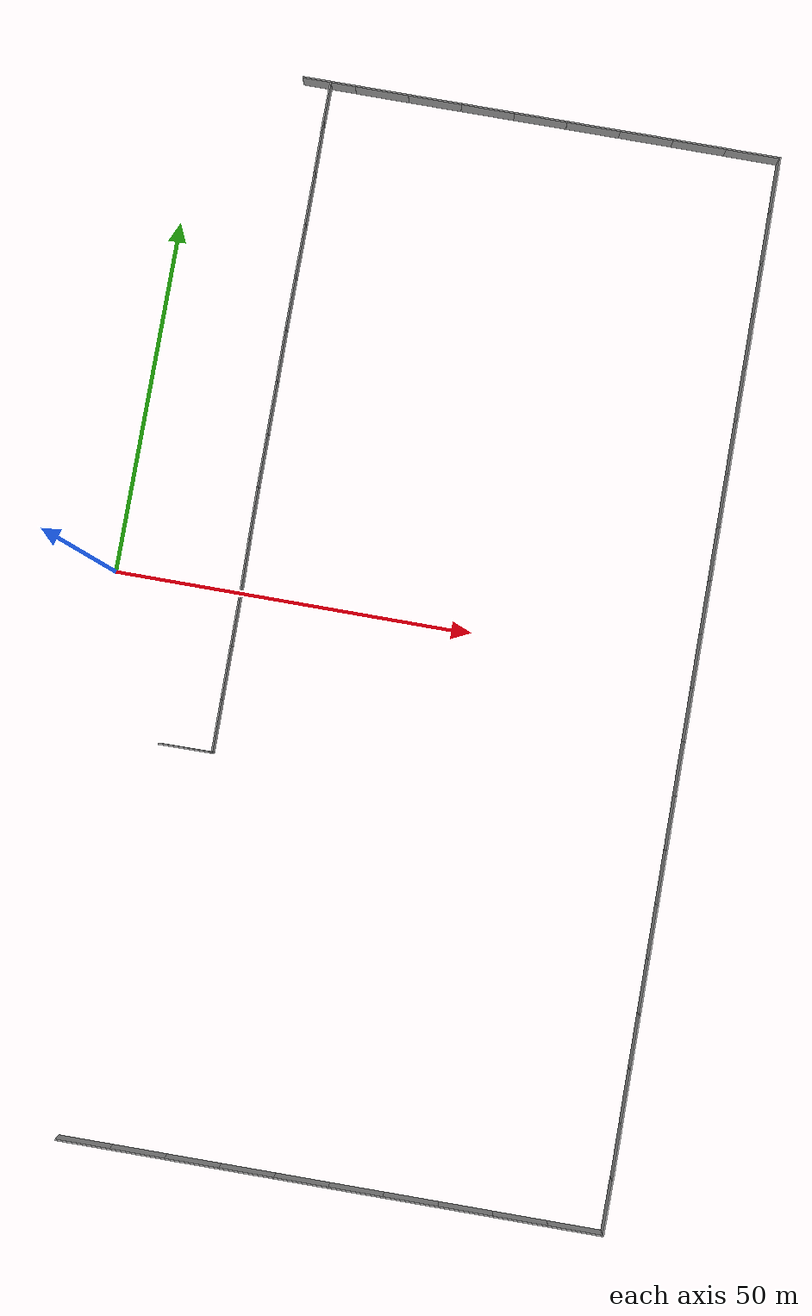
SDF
<sdf version="1.7">
 <world name="default">
  <model name="grey_wall_clone_10_clone_clone_clone_11_clone_clone_8">
   <static>1</static>
   <link name="link">
    <pose>0 0 1.4 0 -0 0</pose>
    <collision name="collision"><geometry><box><size>7.5 0.2 2.8</size></box></geometry></collision>
    <visual name="visual">
     <cast_shadows>0</cast_shadows>
     <geometry><box><size>7.5 0.2 2.8</size></box></geometry>
     <material>
      <script>
       <uri>model://forest/grey_wall/materials/scripts</uri>
       <uri>model://forest/grey_wall/materials/textures</uri>
       <name>vrc/grey_wall</name>
      </script>
     </material>
    </visual>
   </link>
   <pose>9.9578 -77.2456 0 0 -0 0</pose>
  </model>
  <model name="grey_wall_clone_10_clone_clone_clone_11_clone_clone_9">
   <static>1</static>
   <link name="link">
    <pose>0 0 1.4 0 -0 0</pose>
    <collision name="collision"><geometry><box><size>7.5 0.2 2.8</size></box></geometry></collision>
    <visual name="visual">
     <cast_shadows>0</cast_shadows>
     <geometry><box><size>7.5 0.2 2.8</size></box></geometry>
     <material>
      <script>
       <uri>model://forest/grey_wall/materials/scripts</uri>
       <uri>model://forest/grey_wall/materials/textures</uri>
       <name>vrc/grey_wall</name>
      </script>
     </material>
    </visual>
   </link>
   <pose>17.442 -77.2428 0 0 -0 0</pose>
  </model>
  <model name="grey_wall_clone_10_clone_clone_clone_11_clone_clone_10">
   <static>1</static>
   <link name="link">
    <pose>0 0 1.4 0 -0 0</pose>
    <collision name="collision"><geometry><box><size>7.5 0.2 2.8</size></box></geometry></collision>
    <visual name="visual">
     <cast_shadows>0</cast_shadows>
     <geometry><box><size>7.5 0.2 2.8</size></box></geometry>
     <material>
      <script>
       <uri>model://forest/grey_wall/materials/scripts</uri>
       <uri>model://forest/grey_wall/materials/textures</uri>
       <name>vrc/grey_wall</name>
      </script>
     </material>
    </visual>
   </link>
   <pose>24.9441 -77.2473 0 0 -0 0</pose>
  </model>
  <model name="grey_wall_clone_10_clone_clone_clone_11_clone_clone_11">
   <static>1</static>
   <link name="link">
    <pose>0 0 1.4 0 -0 0</pose>
    <collision name="collision"><geometry><box><size>7.5 0.2 2.8</size></box></geometry></collision>
    <visual name="visual">
     <cast_shadows>0</cast_shadows>
     <geometry><box><size>7.5 0.2 2.8</size></box></geometry>
     <material>
      <script>
       <uri>model://forest/grey_wall/materials/scripts</uri>
       <uri>model://forest/grey_wall/materials/textures</uri>
       <name>vrc/grey_wall</name>
      </script>
     </material>
    </visual>
   </link>
   <pose>32.4421 -77.2463 0 0 -0 0</pose>
  </model>
  <model name="grey_wall_clone_10_clone_clone_clone_11_clone_clone_12">
   <static>1</static>
   <link name="link">
    <pose>0 0 1.4 0 -0 0</pose>
    <collision name="collision"><geometry><box><size>7.5 0.2 2.8</size></box></geometry></collision>
    <visual name="visual">
     <cast_shadows>0</cast_shadows>
     <geometry><box><size>7.5 0.2 2.8</size></box></geometry>
     <material>
      <script>
       <uri>model://forest/grey_wall/materials/scripts</uri>
       <uri>model://forest/grey_wall/materials/textures</uri>
       <name>vrc/grey_wall</name>
      </script>
     </material>
    </visual>
   </link>
   <pose>39.9314 -77.2456 0 0 -0 0</pose>
  </model>
  <model name="grey_wall_clone_10_clone_clone_clone_11_clone_clone_13">
   <static>1</static>
   <link name="link">
    <pose>0 0 1.4 0 -0 0</pose>
    <collision name="collision"><geometry><box><size>7.5 0.2 2.8</size></box></geometry></collision>
    <visual name="visual">
     <cast_shadows>0</cast_shadows>
     <geometry><box><size>7.5 0.2 2.8</size></box></geometry>
     <material>
      <script>
       <uri>model://forest/grey_wall/materials/scripts</uri>
       <uri>model://forest/grey_wall/materials/textures</uri>
       <name>vrc/grey_wall</name>
      </script>
     </material>
    </visual>
   </link>
   <pose>47.429 -77.2489 0 0 -0 0</pose>
  </model>
  <model name="grey_wall_clone_10_clone_clone_clone_11_clone_clone_14">
   <static>1</static>
   <link name="link">
    <pose>0 0 1.4 0 -0 0</pose>
    <collision name="collision"><geometry><box><size>7.5 0.2 2.8</size></box></geometry></collision>
    <visual name="visual">
     <cast_shadows>0</cast_shadows>
     <geometry><box><size>7.5 0.2 2.8</size></box></geometry>
     <material>
      <script>
       <uri>model://forest/grey_wall/materials/scripts</uri>
       <uri>model://forest/grey_wall/materials/textures</uri>
       <name>vrc/grey_wall</name>
      </script>
     </material>
    </visual>
   </link>
   <pose>54.8935 -77.2438 0 0 -0 0</pose>
  </model>
  <model name="grey_wall_clone_10_clone_clone_clone_11_clone_clone_15">
   <static>1</static>
   <link name="link">
    <pose>0 0 1.4 0 -0 0</pose>
    <collision name="collision"><geometry><box><size>7.5 0.2 2.8</size></box></geometry></collision>
    <visual name="visual">
     <cast_shadows>0</cast_shadows>
     <geometry><box><size>7.5 0.2 2.8</size></box></geometry>
     <material>
      <script>
       <uri>model://forest/grey_wall/materials/scripts</uri>
       <uri>model://forest/grey_wall/materials/textures</uri>
       <name>vrc/grey_wall</name>
      </script>
     </material>
    </visual>
   </link>
   <pose>62.4043 -77.2429 0 0 -0 0</pose>
  </model>
  <model name="grey_wall_clone_10_clone_clone_clone_11_clone_clone_16">
   <static>1</static>
   <link name="link">
    <pose>0 0 1.4 0 -0 0</pose>
    <collision name="collision"><geometry><box><size>7.5 0.2 2.8</size></box></geometry></collision>
    <visual name="visual">
     <cast_shadows>0</cast_shadows>
     <geometry><box><size>7.5 0.2 2.8</size></box></geometry>
     <material>
      <script>
       <uri>model://forest/grey_wall/materials/scripts</uri>
       <uri>model://forest/grey_wall/materials/textures</uri>
       <name>vrc/grey_wall</name>
      </script>
     </material>
    </visual>
   </link>
   <pose>69.8968 -77.2494 0 0 -0 0</pose>
  </model>
  <model name="grey_wall_clone_10_clone_clone_clone_11_clone_clone_17">
   <static>1</static>
   <link name="link">
    <pose>0 0 1.4 0 -0 0</pose>
    <collision name="collision"><geometry><box><size>7.5 0.2 2.8</size></box></geometry></collision>
    <visual name="visual">
     <cast_shadows>0</cast_shadows>
     <geometry><box><size>7.5 0.2 2.8</size></box></geometry>
     <material>
      <script>
       <uri>model://forest/grey_wall/materials/scripts</uri>
       <uri>model://forest/grey_wall/materials/textures</uri>
       <name>vrc/grey_wall</name>
      </script>
     </material>
    </visual>
   </link>
   <pose>77.4066 -77.2521 0 0 -0 0</pose>
  </model>
  <model name="grey_wall_clone_10_clone_0_clone_11_clone">
   <static>1</static>
   <link name="link">
    <pose>0 0 1.4 0 -0 0</pose>
    <collision name="collision"><geometry><box><size>7.5 0.2 2.8</size></box></geometry></collision>
    <visual name="visual">
     <cast_shadows>0</cast_shadows>
     <geometry><box><size>7.5 0.2 2.8</size></box></geometry>
     <material>
      <script>
       <uri>model://forest/grey_wall/materials/scripts</uri>
       <uri>model://forest/grey_wall/materials/textures</uri>
       <name>vrc/grey_wall</name>
      </script>
     </material>
    </visual>
   </link>
   <pose>81.2442 -73.5802 0 0 0 -1.5802</pose>
  </model>
  <model name="grey_wall_clone_10_clone_0_clone_10_clone">
   <static>1</static>
   <link name="link">
    <pose>0 0 1.4 0 -0 0</pose>
    <collision name="collision"><geometry><box><size>7.5 0.2 2.8</size></box></geometry></collision>
    <visual name="visual">
     <cast_shadows>0</cast_shadows>
     <geometry><box><size>7.5 0.2 2.8</size></box></geometry>
     <material>
      <script>
       <uri>model://forest/grey_wall/materials/scripts</uri>
       <uri>model://forest/grey_wall/materials/textures</uri>
       <name>vrc/grey_wall</name>
      </script>
     </material>
    </visual>
   </link>
   <pose>81.3001 -66.0858 0 0 0 -1.56932</pose>
  </model>
  <model name="grey_wall_clone_10_clone_0_clone_9_clone">
   <static>1</static>
   <link name="link">
    <pose>0 0 1.4 0 -0 0</pose>
    <collision name="collision"><geometry><box><size>7.5 0.2 2.8</size></box></geometry></collision>
    <visual name="visual">
     <cast_shadows>0</cast_shadows>
     <geometry><box><size>7.5 0.2 2.8</size></box></geometry>
     <material>
      <script>
       <uri>model://forest/grey_wall/materials/scripts</uri>
       <uri>model://forest/grey_wall/materials/textures</uri>
       <name>vrc/grey_wall</name>
      </script>
     </material>
    </visual>
   </link>
   <pose>81.2777 -58.6142 0 0 0 -1.56932</pose>
  </model>
  <model name="grey_wall_clone_10_clone_0_clone_8_clone">
   <static>1</static>
   <link name="link">
    <pose>0 0 1.4 0 -0 0</pose>
    <collision name="collision"><geometry><box><size>7.5 0.2 2.8</size></box></geometry></collision>
    <visual name="visual">
     <cast_shadows>0</cast_shadows>
     <geometry><box><size>7.5 0.2 2.8</size></box></geometry>
     <material>
      <script>
       <uri>model://forest/grey_wall/materials/scripts</uri>
       <uri>model://forest/grey_wall/materials/textures</uri>
       <name>vrc/grey_wall</name>
      </script>
     </material>
    </visual>
   </link>
   <pose>81.2777 -51.1177 0 0 0 -1.56932</pose>
  </model>
  <model name="grey_wall_clone_10_clone_0_clone_7_clone">
   <static>1</static>
   <link name="link">
    <pose>0 0 1.4 0 -0 0</pose>
    <collision name="collision"><geometry><box><size>7.5 0.2 2.8</size></box></geometry></collision>
    <visual name="visual">
     <cast_shadows>0</cast_shadows>
     <geometry><box><size>7.5 0.2 2.8</size></box></geometry>
     <material>
      <script>
       <uri>model://forest/grey_wall/materials/scripts</uri>
       <uri>model://forest/grey_wall/materials/textures</uri>
       <name>vrc/grey_wall</name>
      </script>
     </material>
    </visual>
   </link>
   <pose>81.2788 -43.6064 0 0 0 -1.56932</pose>
  </model>
  <model name="grey_wall_clone_10_clone_0_clone_6_clone">
   <static>1</static>
   <link name="link">
    <pose>0 0 1.4 0 -0 0</pose>
    <collision name="collision"><geometry><box><size>7.5 0.2 2.8</size></box></geometry></collision>
    <visual name="visual">
     <cast_shadows>0</cast_shadows>
     <geometry><box><size>7.5 0.2 2.8</size></box></geometry>
     <material>
      <script>
       <uri>model://forest/grey_wall/materials/scripts</uri>
       <uri>model://forest/grey_wall/materials/textures</uri>
       <name>vrc/grey_wall</name>
      </script>
     </material>
    </visual>
   </link>
   <pose>81.2767 -36.0958 0 0 0 -1.56932</pose>
  </model>
  <model name="grey_wall_clone_10_clone_0_clone_5_clone_13">
   <static>1</static>
   <link name="link">
    <pose>0 0 1.4 0 -0 0</pose>
    <collision name="collision"><geometry><box><size>7.5 0.2 2.8</size></box></geometry></collision>
    <visual name="visual">
     <cast_shadows>0</cast_shadows>
     <geometry><box><size>7.5 0.2 2.8</size></box></geometry>
     <material>
      <script>
       <uri>model://forest/grey_wall/materials/scripts</uri>
       <uri>model://forest/grey_wall/materials/textures</uri>
       <name>vrc/grey_wall</name>
      </script>
     </material>
    </visual>
   </link>
   <pose>81.2728 -28.5811 0 0 0 -1.56932</pose>
  </model>
  <model name="grey_wall_clone_10_clone_0_clone_4_clone">
   <static>1</static>
   <link name="link">
    <pose>0 0 1.4 0 -0 0</pose>
    <collision name="collision"><geometry><box><size>7.5 0.2 2.8</size></box></geometry></collision>
    <visual name="visual">
     <cast_shadows>0</cast_shadows>
     <geometry><box><size>7.5 0.2 2.8</size></box></geometry>
     <material>
      <script>
       <uri>model://forest/grey_wall/materials/scripts</uri>
       <uri>model://forest/grey_wall/materials/textures</uri>
       <name>vrc/grey_wall</name>
      </script>
     </material>
    </visual>
   </link>
   <pose>81.2736 -21.0806 0 0 0 -1.56932</pose>
  </model>
  <model name="grey_wall_clone_10_clone_0_clone_3_clone">
   <static>1</static>
   <link name="link">
    <pose>0 0 1.4 0 -0 0</pose>
    <collision name="collision"><geometry><box><size>7.5 0.2 2.8</size></box></geometry></collision>
    <visual name="visual">
     <cast_shadows>0</cast_shadows>
     <geometry><box><size>7.5 0.2 2.8</size></box></geometry>
     <material>
      <script>
       <uri>model://forest/grey_wall/materials/scripts</uri>
       <uri>model://forest/grey_wall/materials/textures</uri>
       <name>vrc/grey_wall</name>
      </script>
     </material>
    </visual>
   </link>
   <pose>81.2554 -13.5842 0 0 0 -1.56932</pose>
  </model>
  <model name="grey_wall_clone_10_clone_0_clone_2_clone">
   <static>1</static>
   <link name="link">
    <pose>0 0 1.4 0 -0 0</pose>
    <collision name="collision"><geometry><box><size>7.5 0.2 2.8</size></box></geometry></collision>
    <visual name="visual">
     <cast_shadows>0</cast_shadows>
     <geometry><box><size>7.5 0.2 2.8</size></box></geometry>
     <material>
      <script>
       <uri>model://forest/grey_wall/materials/scripts</uri>
       <uri>model://forest/grey_wall/materials/textures</uri>
       <name>vrc/grey_wall</name>
      </script>
     </material>
    </visual>
   </link>
   <pose>81.262 -6.06923 0 0 0 -1.56932</pose>
  </model>
  <model name="grey_wall_clone_10_clone_0_clone_1_clone">
   <static>1</static>
   <link name="link">
    <pose>0 0 1.4 0 -0 0</pose>
    <collision name="collision"><geometry><box><size>7.5 0.2 2.8</size></box></geometry></collision>
    <visual name="visual">
     <cast_shadows>0</cast_shadows>
     <geometry><box><size>7.5 0.2 2.8</size></box></geometry>
     <material>
      <script>
       <uri>model://forest/grey_wall/materials/scripts</uri>
       <uri>model://forest/grey_wall/materials/textures</uri>
       <name>vrc/grey_wall</name>
      </script>
     </material>
    </visual>
   </link>
   <pose>81.2538 1.43804 0 0 0 -1.56932</pose>
  </model>
  <model name="grey_wall_clone_10_clone_0_clone_0_clone">
   <static>1</static>
   <link name="link">
    <pose>0 0 1.4 0 -0 0</pose>
    <collision name="collision"><geometry><box><size>7.5 0.2 2.8</size></box></geometry></collision>
    <visual name="visual">
     <cast_shadows>0</cast_shadows>
     <geometry><box><size>7.5 0.2 2.8</size></box></geometry>
     <material>
      <script>
       <uri>model://forest/grey_wall/materials/scripts</uri>
       <uri>model://forest/grey_wall/materials/textures</uri>
       <name>vrc/grey_wall</name>
      </script>
     </material>
    </visual>
   </link>
   <pose>81.2487 8.94341 0 0 0 -1.56932</pose>
  </model>
  <model name="grey_wall_clone_10_clone_0_clone_clone">
   <static>1</static>
   <link name="link">
    <pose>0 0 1.4 0 -0 0</pose>
    <collision name="collision"><geometry><box><size>7.5 0.2 2.8</size></box></geometry></collision>
    <visual name="visual">
     <cast_shadows>0</cast_shadows>
     <geometry><box><size>7.5 0.2 2.8</size></box></geometry>
     <material>
      <script>
       <uri>model://forest/grey_wall/materials/scripts</uri>
       <uri>model://forest/grey_wall/materials/textures</uri>
       <name>vrc/grey_wall</name>
      </script>
     </material>
    </visual>
   </link>
   <pose>81.244 16.4592 0 0 0 -1.56932</pose>
  </model>
  <model name="grey_wall_clone_10_clone_0_clone_12">
   <static>1</static>
   <link name="link">
    <pose>0 0 1.4 0 -0 0</pose>
    <collision name="collision"><geometry><box><size>7.5 0.2 2.8</size></box></geometry></collision>
    <visual name="visual">
     <cast_shadows>0</cast_shadows>
     <geometry><box><size>7.5 0.2 2.8</size></box></geometry>
     <material>
      <script>
       <uri>model://forest/grey_wall/materials/scripts</uri>
       <uri>model://forest/grey_wall/materials/textures</uri>
       <name>vrc/grey_wall</name>
      </script>
     </material>
    </visual>
   </link>
   <pose>81.241 23.9604 0 0 0 -1.56932</pose>
  </model>
  <model name="grey_wall_clone_10_clone_0_clone_13">
   <static>1</static>
   <link name="link">
    <pose>0 0 1.4 0 -0 0</pose>
    <collision name="collision"><geometry><box><size>7.5 0.2 2.8</size></box></geometry></collision>
    <visual name="visual">
     <cast_shadows>0</cast_shadows>
     <geometry><box><size>7.5 0.2 2.8</size></box></geometry>
     <material>
      <script>
       <uri>model://forest/grey_wall/materials/scripts</uri>
       <uri>model://forest/grey_wall/materials/textures</uri>
       <name>vrc/grey_wall</name>
      </script>
     </material>
    </visual>
   </link>
   <pose>81.233 31.4667 0 0 0 -1.56932</pose>
  </model>
  <model name="grey_wall_clone_10_clone_0_clone_14">
   <static>1</static>
   <link name="link">
    <pose>0 0 1.4 0 -0 0</pose>
    <collision name="collision"><geometry><box><size>7.5 0.2 2.8</size></box></geometry></collision>
    <visual name="visual">
     <cast_shadows>0</cast_shadows>
     <geometry><box><size>7.5 0.2 2.8</size></box></geometry>
     <material>
      <script>
       <uri>model://forest/grey_wall/materials/scripts</uri>
       <uri>model://forest/grey_wall/materials/textures</uri>
       <name>vrc/grey_wall</name>
      </script>
     </material>
    </visual>
   </link>
   <pose>81.2299 38.978 0 0 0 -1.56932</pose>
  </model>
  <model name="grey_wall_clone_10_clone_0_clone_15">
   <static>1</static>
   <link name="link">
    <pose>0 0 1.4 0 -0 0</pose>
    <collision name="collision"><geometry><box><size>7.5 0.2 2.8</size></box></geometry></collision>
    <visual name="visual">
     <cast_shadows>0</cast_shadows>
     <geometry><box><size>7.5 0.2 2.8</size></box></geometry>
     <material>
      <script>
       <uri>model://forest/grey_wall/materials/scripts</uri>
       <uri>model://forest/grey_wall/materials/textures</uri>
       <name>vrc/grey_wall</name>
      </script>
     </material>
    </visual>
   </link>
   <pose>81.2399 46.4861 0 0 0 -1.56932</pose>
  </model>
  <model name="grey_wall_clone_10_clone_0_clone_16">
   <static>1</static>
   <link name="link">
    <pose>0 0 1.4 0 -0 0</pose>
    <collision name="collision"><geometry><box><size>7.5 0.2 2.8</size></box></geometry></collision>
    <visual name="visual">
     <cast_shadows>0</cast_shadows>
     <geometry><box><size>7.5 0.2 2.8</size></box></geometry>
     <material>
      <script>
       <uri>model://forest/grey_wall/materials/scripts</uri>
       <uri>model://forest/grey_wall/materials/textures</uri>
       <name>vrc/grey_wall</name>
      </script>
     </material>
    </visual>
   </link>
   <pose>81.2341 53.9889 0 0 0 -1.56932</pose>
  </model>
  <model name="grey_wall_clone_10_clone_0_clone_17">
   <static>1</static>
   <link name="link">
    <pose>0 0 1.4 0 -0 0</pose>
    <collision name="collision"><geometry><box><size>7.5 0.2 2.8</size></box></geometry></collision>
    <visual name="visual">
     <cast_shadows>0</cast_shadows>
     <geometry><box><size>7.5 0.2 2.8</size></box></geometry>
     <material>
      <script>
       <uri>model://forest/grey_wall/materials/scripts</uri>
       <uri>model://forest/grey_wall/materials/textures</uri>
       <name>vrc/grey_wall</name>
      </script>
     </material>
    </visual>
   </link>
   <pose>81.2319 61.4946 0 0 0 -1.56932</pose>
  </model>
  <model name="grey_wall_clone_10_clone_0_clone_18">
   <static>1</static>
   <link name="link">
    <pose>0 0 1.4 0 -0 0</pose>
    <collision name="collision"><geometry><box><size>7.5 0.2 2.8</size></box></geometry></collision>
    <visual name="visual">
     <cast_shadows>0</cast_shadows>
     <geometry><box><size>7.5 0.2 2.8</size></box></geometry>
     <material>
      <script>
       <uri>model://forest/grey_wall/materials/scripts</uri>
       <uri>model://forest/grey_wall/materials/textures</uri>
       <name>vrc/grey_wall</name>
      </script>
     </material>
    </visual>
   </link>
   <pose>81.2148 68.9647 0 0 0 -1.56932</pose>
  </model>
  <model name="grey_wall_clone_10_clone_clone_0">
   <static>1</static>
   <link name="link">
    <pose>0 0 1.4 0 -0 0</pose>
    <collision name="collision"><geometry><box><size>7.5 0.2 2.8</size></box></geometry></collision>
    <visual name="visual">
     <cast_shadows>0</cast_shadows>
     <geometry><box><size>7.5 0.2 2.8</size></box></geometry>
     <material>
      <script>
       <uri>model://forest/grey_wall/materials/scripts</uri>
       <uri>model://forest/grey_wall/materials/textures</uri>
       <name>vrc/grey_wall</name>
      </script>
     </material>
    </visual>
   </link>
   <pose>77.3508 72.6116 0 0 -0 0</pose>
  </model>
  <model name="grey_wall_clone_10_clone_clone_1">
   <static>1</static>
   <link name="link">
    <pose>0 0 1.4 0 -0 0</pose>
    <collision name="collision"><geometry><box><size>7.5 0.2 2.8</size></box></geometry></collision>
    <visual name="visual">
     <cast_shadows>0</cast_shadows>
     <geometry><box><size>7.5 0.2 2.8</size></box></geometry>
     <material>
      <script>
       <uri>model://forest/grey_wall/materials/scripts</uri>
       <uri>model://forest/grey_wall/materials/textures</uri>
       <name>vrc/grey_wall</name>
      </script>
     </material>
    </visual>
   </link>
   <pose>69.8438 72.6289 0 0 -0 0</pose>
  </model>
  <model name="grey_wall_clone_10_clone_clone_2">
   <static>1</static>
   <link name="link">
    <pose>0 0 1.4 0 -0 0</pose>
    <collision name="collision"><geometry><box><size>7.5 0.2 2.8</size></box></geometry></collision>
    <visual name="visual">
     <cast_shadows>0</cast_shadows>
     <geometry><box><size>7.5 0.2 2.8</size></box></geometry>
     <material>
      <script>
       <uri>model://forest/grey_wall/materials/scripts</uri>
       <uri>model://forest/grey_wall/materials/textures</uri>
       <name>vrc/grey_wall</name>
      </script>
     </material>
    </visual>
   </link>
   <pose>62.3519 72.6417 0 0 -0 0</pose>
  </model>
  <model name="grey_wall_clone_10_clone_clone_3">
   <static>1</static>
   <link name="link">
    <pose>0 0 1.4 0 -0 0</pose>
    <collision name="collision"><geometry><box><size>7.5 0.2 2.8</size></box></geometry></collision>
    <visual name="visual">
     <cast_shadows>0</cast_shadows>
     <geometry><box><size>7.5 0.2 2.8</size></box></geometry>
     <material>
      <script>
       <uri>model://forest/grey_wall/materials/scripts</uri>
       <uri>model://forest/grey_wall/materials/textures</uri>
       <name>vrc/grey_wall</name>
      </script>
     </material>
    </visual>
   </link>
   <pose>54.875 72.6299 0 0 -0 0</pose>
  </model>
  <model name="grey_wall_clone_10_clone_clone_4">
   <static>1</static>
   <link name="link">
    <pose>0 0 1.4 0 -0 0</pose>
    <collision name="collision"><geometry><box><size>7.5 0.2 2.8</size></box></geometry></collision>
    <visual name="visual">
     <cast_shadows>0</cast_shadows>
     <geometry><box><size>7.5 0.2 2.8</size></box></geometry>
     <material>
      <script>
       <uri>model://forest/grey_wall/materials/scripts</uri>
       <uri>model://forest/grey_wall/materials/textures</uri>
       <name>vrc/grey_wall</name>
      </script>
     </material>
    </visual>
   </link>
   <pose>47.3663 72.6324 0 0 -0 0</pose>
  </model>
  <model name="grey_wall_clone_10_clone_clone_5">
   <static>1</static>
   <link name="link">
    <pose>0 0 1.4 0 -0 0</pose>
    <collision name="collision"><geometry><box><size>7.5 0.2 2.8</size></box></geometry></collision>
    <visual name="visual">
     <cast_shadows>0</cast_shadows>
     <geometry><box><size>7.5 0.2 2.8</size></box></geometry>
     <material>
      <script>
       <uri>model://forest/grey_wall/materials/scripts</uri>
       <uri>model://forest/grey_wall/materials/textures</uri>
       <name>vrc/grey_wall</name>
      </script>
     </material>
    </visual>
   </link>
   <pose>39.8774 72.6251 0 0 -0 0</pose>
  </model>
  <model name="grey_wall_clone_10_clone_clone_6">
   <static>1</static>
   <link name="link">
    <pose>0 0 1.4 0 -0 0</pose>
    <collision name="collision"><geometry><box><size>7.5 0.2 2.8</size></box></geometry></collision>
    <visual name="visual">
     <cast_shadows>0</cast_shadows>
     <geometry><box><size>7.5 0.2 2.8</size></box></geometry>
     <material>
      <script>
       <uri>model://forest/grey_wall/materials/scripts</uri>
       <uri>model://forest/grey_wall/materials/textures</uri>
       <name>vrc/grey_wall</name>
      </script>
     </material>
    </visual>
   </link>
   <pose>32.3692 72.6193 0 0 -0 0</pose>
  </model>
  <model name="grey_wall_clone_10_clone_clone_7">
   <static>1</static>
   <link name="link">
    <pose>0 0 1.4 0 -0 0</pose>
    <collision name="collision"><geometry><box><size>7.5 0.2 2.8</size></box></geometry></collision>
    <visual name="visual">
     <cast_shadows>0</cast_shadows>
     <geometry><box><size>7.5 0.2 2.8</size></box></geometry>
     <material>
      <script>
       <uri>model://forest/grey_wall/materials/scripts</uri>
       <uri>model://forest/grey_wall/materials/textures</uri>
       <name>vrc/grey_wall</name>
      </script>
     </material>
    </visual>
   </link>
   <pose>24.8712 72.6187 0 0 -0 0</pose>
  </model>
  <model name="grey_wall_clone_10_clone_clone_8">
   <static>1</static>
   <link name="link">
    <pose>0 0 1.4 0 -0 0</pose>
    <collision name="collision"><geometry><box><size>7.5 0.2 2.8</size></box></geometry></collision>
    <visual name="visual">
     <cast_shadows>0</cast_shadows>
     <geometry><box><size>7.5 0.2 2.8</size></box></geometry>
     <material>
      <script>
       <uri>model://forest/grey_wall/materials/scripts</uri>
       <uri>model://forest/grey_wall/materials/textures</uri>
       <name>vrc/grey_wall</name>
      </script>
     </material>
    </visual>
   </link>
   <pose>17.3775 72.6269 0 0 -0 0</pose>
  </model>
  <model name="grey_wall_clone_10_clone_clone_8_clone">
   <static>1</static>
   <link name="link">
    <pose>0 0 1.4 0 -0 0</pose>
    <collision name="collision"><geometry><box><size>7.5 0.2 2.8</size></box></geometry></collision>
    <visual name="visual">
     <cast_shadows>0</cast_shadows>
     <geometry><box><size>7.5 0.2 2.8</size></box></geometry>
     <material>
      <script>
       <uri>model://forest/grey_wall/materials/scripts</uri>
       <uri>model://forest/grey_wall/materials/textures</uri>
       <name>vrc/grey_wall</name>
      </script>
     </material>
    </visual>
   </link>
   <pose>17.5688 55.8813 0 0 -0 1.56798</pose>
  </model>
  <model name="grey_wall_clone_10_clone_clone_8_clone_clone">
   <static>1</static>
   <link name="link">
    <pose>0 0 1.4 0 -0 0</pose>
    <collision name="collision"><geometry><box><size>7.5 0.2 2.8</size></box></geometry></collision>
    <visual name="visual">
     <cast_shadows>0</cast_shadows>
     <geometry><box><size>7.5 0.2 2.8</size></box></geometry>
     <material>
      <script>
       <uri>model://forest/grey_wall/materials/scripts</uri>
       <uri>model://forest/grey_wall/materials/textures</uri>
       <name>vrc/grey_wall</name>
      </script>
     </material>
    </visual>
   </link>
   <pose>17.533 48.4348 0 0 -0 1.56247</pose>
  </model>
  <model name="grey_wall_clone_10_clone_clone_8_clone_clone_clone">
   <static>1</static>
   <link name="link">
    <pose>0 0 1.4 0 -0 0</pose>
    <collision name="collision"><geometry><box><size>7.5 0.2 2.8</size></box></geometry></collision>
    <visual name="visual">
     <cast_shadows>0</cast_shadows>
     <geometry><box><size>7.5 0.2 2.8</size></box></geometry>
     <material>
      <script>
       <uri>model://forest/grey_wall/materials/scripts</uri>
       <uri>model://forest/grey_wall/materials/textures</uri>
       <name>vrc/grey_wall</name>
      </script>
     </material>
    </visual>
   </link>
   <pose>17.4902 40.9474 0 0 -0 1.56789</pose>
  </model>
  <model name="grey_wall_clone_10_clone_clone_8_clone_clone_clone_0">
   <static>1</static>
   <link name="link">
    <pose>0 0 1.4 0 -0 0</pose>
    <collision name="collision"><geometry><box><size>7.5 0.2 2.8</size></box></geometry></collision>
    <visual name="visual">
     <cast_shadows>0</cast_shadows>
     <geometry><box><size>7.5 0.2 2.8</size></box></geometry>
     <material>
      <script>
       <uri>model://forest/grey_wall/materials/scripts</uri>
       <uri>model://forest/grey_wall/materials/textures</uri>
       <name>vrc/grey_wall</name>
      </script>
     </material>
    </visual>
   </link>
   <pose>17.4944 33.5015 0 0 -0 1.57742</pose>
  </model>
  <model name="grey_wall_clone_10_clone_clone_8_clone_clone_clone_1">
   <static>1</static>
   <link name="link">
    <pose>0 0 1.4 0 -0 0</pose>
    <collision name="collision"><geometry><box><size>7.5 0.2 2.8</size></box></geometry></collision>
    <visual name="visual">
     <cast_shadows>0</cast_shadows>
     <geometry><box><size>7.5 0.2 2.8</size></box></geometry>
     <material>
      <script>
       <uri>model://forest/grey_wall/materials/scripts</uri>
       <uri>model://forest/grey_wall/materials/textures</uri>
       <name>vrc/grey_wall</name>
      </script>
     </material>
    </visual>
   </link>
   <pose>17.5255 26.0019 0 0 -0 1.57114</pose>
  </model>
  <model name="grey_wall_clone_10_clone_clone_8_clone_clone_clone_2">
   <static>1</static>
   <link name="link">
    <pose>0 0 1.4 0 -0 0</pose>
    <collision name="collision"><geometry><box><size>7.5 0.2 2.8</size></box></geometry></collision>
    <visual name="visual">
     <cast_shadows>0</cast_shadows>
     <geometry><box><size>7.5 0.2 2.8</size></box></geometry>
     <material>
      <script>
       <uri>model://forest/grey_wall/materials/scripts</uri>
       <uri>model://forest/grey_wall/materials/textures</uri>
       <name>vrc/grey_wall</name>
      </script>
     </material>
    </visual>
   </link>
   <pose>17.5465 68.9045 0 0 -0 1.56156</pose>
  </model>
  <model name="grey_wall_clone_10_clone_clone_8_clone_clone_clone_3">
   <static>1</static>
   <link name="link">
    <pose>0 0 1.4 0 -0 0</pose>
    <collision name="collision"><geometry><box><size>7.5 0.2 2.8</size></box></geometry></collision>
    <visual name="visual">
     <cast_shadows>0</cast_shadows>
     <geometry><box><size>7.5 0.2 2.8</size></box></geometry>
     <material>
      <script>
       <uri>model://forest/grey_wall/materials/scripts</uri>
       <uri>model://forest/grey_wall/materials/textures</uri>
       <name>vrc/grey_wall</name>
      </script>
     </material>
    </visual>
   </link>
   <pose>17.5489 63.3004 0 0 -0 1.57658</pose>
  </model>
  <model name="grey_wall_clone_10_clone_clone_8_clone_clone_clone_4">
   <static>1</static>
   <link name="link">
    <pose>0 0 1.4 0 -0 0</pose>
    <collision name="collision"><geometry><box><size>7.5 0.2 2.8</size></box></geometry></collision>
    <visual name="visual">
     <cast_shadows>0</cast_shadows>
     <geometry><box><size>7.5 0.2 2.8</size></box></geometry>
     <material>
      <script>
       <uri>model://forest/grey_wall/materials/scripts</uri>
       <uri>model://forest/grey_wall/materials/textures</uri>
       <name>vrc/grey_wall</name>
      </script>
     </material>
    </visual>
   </link>
   <pose>17.5277 18.5338 0 0 -0 1.57049</pose>
  </model>
  <model name="grey_wall_clone_10_clone_clone_8_clone_clone_clone_5">
   <static>1</static>
   <link name="link">
    <pose>0 0 1.4 0 -0 0</pose>
    <collision name="collision"><geometry><box><size>7.5 0.2 2.8</size></box></geometry></collision>
    <visual name="visual">
     <cast_shadows>0</cast_shadows>
     <geometry><box><size>7.5 0.2 2.8</size></box></geometry>
     <material>
      <script>
       <uri>model://forest/grey_wall/materials/scripts</uri>
       <uri>model://forest/grey_wall/materials/textures</uri>
       <name>vrc/grey_wall</name>
      </script>
     </material>
    </visual>
   </link>
   <pose>17.5686 11.0773 0 0 -0 1.58164</pose>
  </model>
  <model name="grey_wall_clone_10_clone_clone_8_clone_clone_clone_5_clone">
   <static>1</static>
   <link name="link">
    <pose>0 0 1.4 0 -0 0</pose>
    <collision name="collision"><geometry><box><size>7.5 0.2 2.8</size></box></geometry></collision>
    <visual name="visual">
     <cast_shadows>0</cast_shadows>
     <geometry><box><size>7.5 0.2 2.8</size></box></geometry>
     <material>
      <script>
       <uri>model://forest/grey_wall/materials/scripts</uri>
       <uri>model://forest/grey_wall/materials/textures</uri>
       <name>vrc/grey_wall</name>
      </script>
     </material>
    </visual>
   </link>
   <pose>17.6789 3.69414 0 0 -0 1.58734</pose>
  </model>
  <model name="grey_wall_clone_10_clone_clone_8_clone_clone_clone_5_clone_0">
   <static>1</static>
   <link name="link">
    <pose>0 0 1.4 0 -0 0</pose>
    <collision name="collision"><geometry><box><size>7.5 0.2 2.8</size></box></geometry></collision>
    <visual name="visual">
     <cast_shadows>0</cast_shadows>
     <geometry><box><size>7.5 0.2 2.8</size></box></geometry>
     <material>
      <script>
       <uri>model://forest/grey_wall/materials/scripts</uri>
       <uri>model://forest/grey_wall/materials/textures</uri>
       <name>vrc/grey_wall</name>
      </script>
     </material>
    </visual>
   </link>
   <pose>17.7501 -3.75616 0 0 -0 1.57423</pose>
  </model>
  <model name="grey_wall_clone_10_clone_clone_8_clone_clone_clone_5_clone_0_clone">
   <static>1</static>
   <link name="link">
    <pose>0 0 1.4 0 -0 0</pose>
    <collision name="collision"><geometry><box><size>7.5 0.2 2.8</size></box></geometry></collision>
    <visual name="visual">
     <cast_shadows>0</cast_shadows>
     <geometry><box><size>7.5 0.2 2.8</size></box></geometry>
     <material>
      <script>
       <uri>model://forest/grey_wall/materials/scripts</uri>
       <uri>model://forest/grey_wall/materials/textures</uri>
       <name>vrc/grey_wall</name>
      </script>
     </material>
    </visual>
   </link>
   <pose>17.761 -11.2087 0 0 -0 1.57423</pose>
  </model>
  <model name="grey_wall_clone_10_clone_clone_8_clone_clone_clone_5_clone_0_clone_0">
   <static>1</static>
   <link name="link">
    <pose>0 0 1.4 0 -0 0</pose>
    <collision name="collision"><geometry><box><size>7.5 0.2 2.8</size></box></geometry></collision>
    <visual name="visual">
     <cast_shadows>0</cast_shadows>
     <geometry><box><size>7.5 0.2 2.8</size></box></geometry>
     <material>
      <script>
       <uri>model://forest/grey_wall/materials/scripts</uri>
       <uri>model://forest/grey_wall/materials/textures</uri>
       <name>vrc/grey_wall</name>
      </script>
     </material>
    </visual>
   </link>
   <pose>17.7804 -18.6471 0 0 -0 1.57423</pose>
  </model>
  <model name="grey_wall_clone_10_clone_clone_8_clone_clone_clone_5_clone_0_clone_1">
   <static>1</static>
   <link name="link">
    <pose>0 0 1.4 0 -0 0</pose>
    <collision name="collision"><geometry><box><size>7.5 0.2 2.8</size></box></geometry></collision>
    <visual name="visual">
     <cast_shadows>0</cast_shadows>
     <geometry><box><size>7.5 0.2 2.8</size></box></geometry>
     <material>
      <script>
       <uri>model://forest/grey_wall/materials/scripts</uri>
       <uri>model://forest/grey_wall/materials/textures</uri>
       <name>vrc/grey_wall</name>
      </script>
     </material>
    </visual>
   </link>
   <pose>14.1519 -22.3281 0 0 -0 0.006466</pose>
  </model>
 </world>
</sdf>
